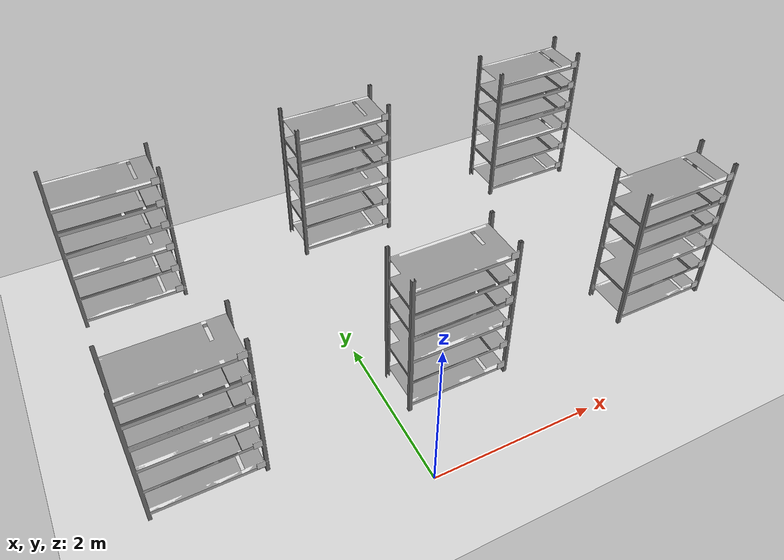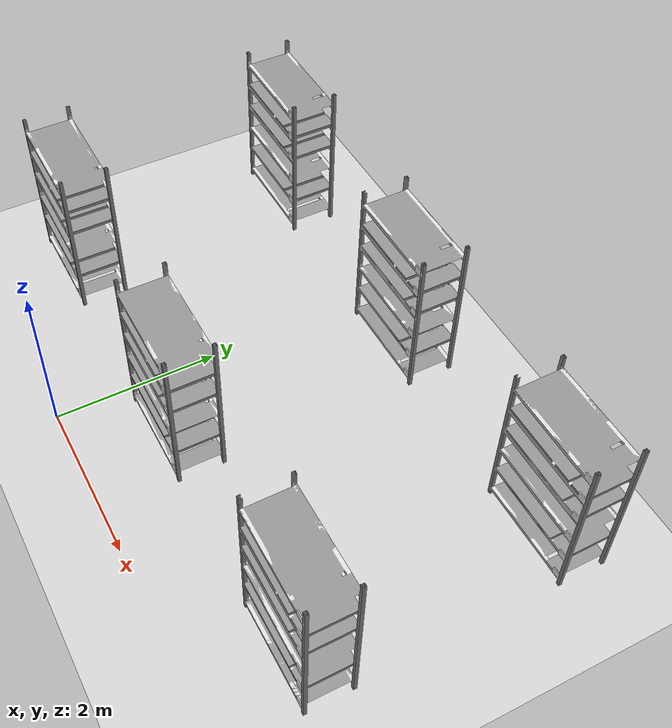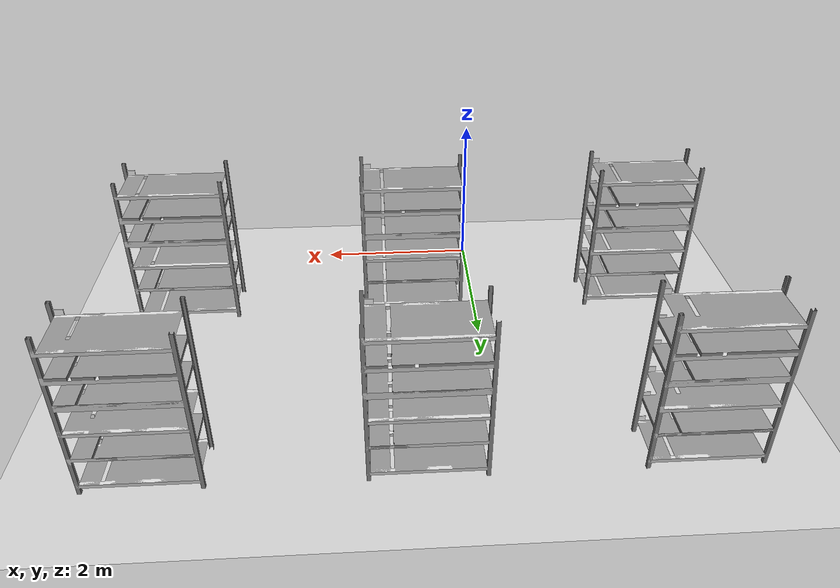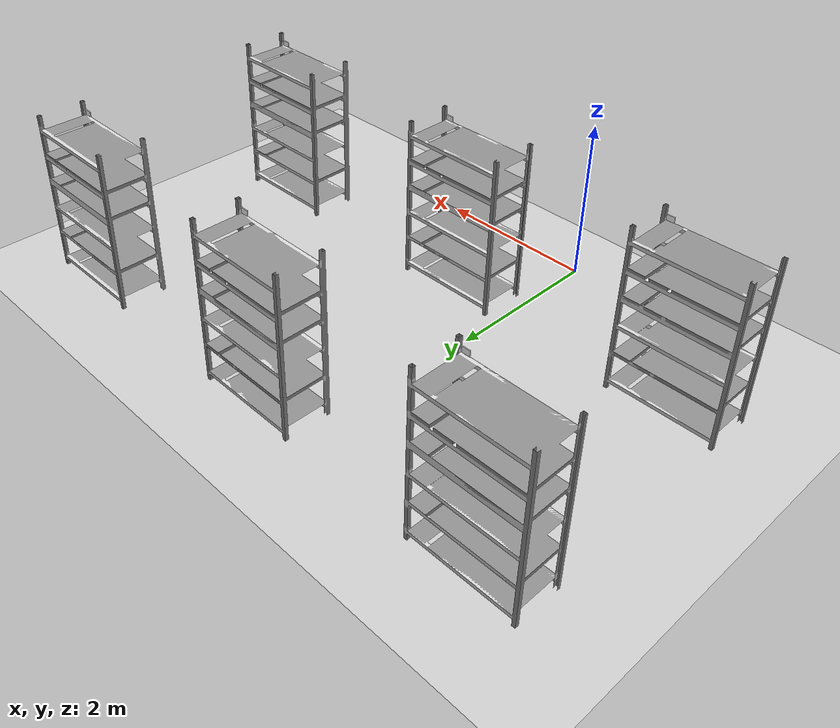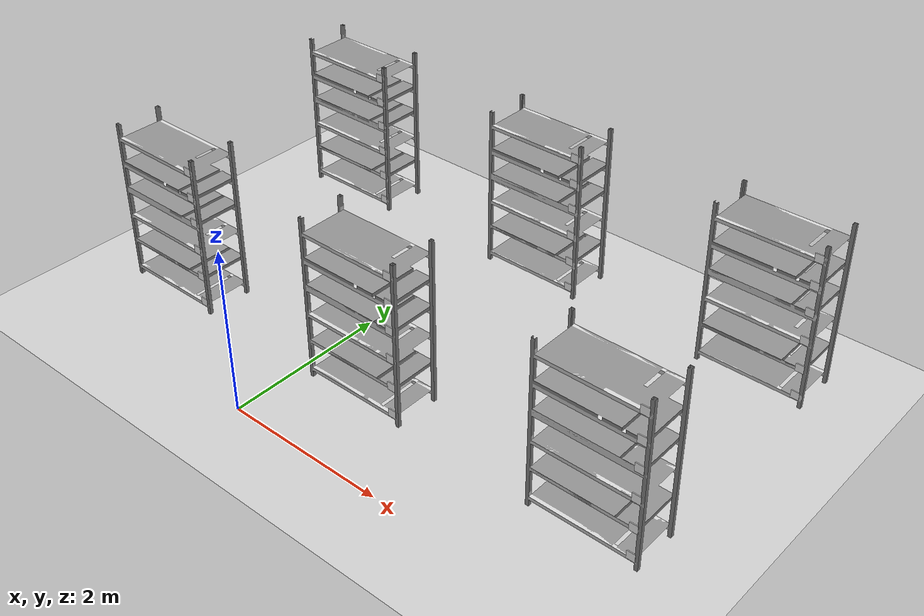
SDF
<sdf version="1.7">
 <world name="default">
  <model name="ground_plane">
   <static>1</static>
   <link name="link">
    <collision name="collision">
     <geometry><plane><normal>0 0 1</normal><size>100 100</size></plane></geometry>
     <surface><friction><ode><mu>100</mu><mu2>50</mu2></ode></friction></surface>
    </collision>
    <visual name="visual">
     <cast_shadows>0</cast_shadows>
     <geometry><plane><normal>0 0 1</normal><size>100 100</size></plane></geometry>
     <material>
      <script><uri>file://media/materials/scripts/gazebo.material</uri><name>Gazebo/Grey</name></script>
     </material>
    </visual>
   </link>
  </model>
  <light name="sun" type="directional">
   <pose>0 0 10 0 -0 0</pose>
   <diffuse>0.8 0.8 0.8 1</diffuse>
   <specular>0.2 0.2 0.2 1</specular>
   <attenuation>
    <range>1000</range>
    <constant>0.9</constant>
    <linear>0.01</linear>
    <quadratic>0.001</quadratic>
   </attenuation>
   <direction>-0.5 0.1 -0.9</direction>
   <spot><inner_angle>0</inner_angle><outer_angle>0</outer_angle><falloff>0</falloff></spot>
  </light>
  <model name="shelf_6_r1_c1">
   <static>1</static>
   <link name="link">
    <collision name="collision">
     <geometry>
      <mesh><uri>model://shelf_6/meshes/shelf_6.dae</uri><scale>0.001 0.001 0.001</scale></mesh>
     </geometry>
    </collision>
    <visual name="visual">
     <geometry>
      <mesh><uri>model://shelf_6/meshes/shelf_6.dae</uri><scale>0.001 0.001 0.001</scale></mesh>
     </geometry>
    </visual>
   </link>
   <pose>-1.5 1.5 0 0 -0 0</pose>
  </model>
  <model name="shelf_6_r1_c2">
   <static>1</static>
   <link name="link">
    <collision name="collision">
     <geometry>
      <mesh><uri>model://shelf_6/meshes/shelf_6.dae</uri><scale>0.001 0.001 0.001</scale></mesh>
     </geometry>
    </collision>
    <visual name="visual">
     <geometry>
      <mesh><uri>model://shelf_6/meshes/shelf_6.dae</uri><scale>0.001 0.001 0.001</scale></mesh>
     </geometry>
    </visual>
   </link>
   <pose>1.5 1.5 0 0 -0 0</pose>
  </model>
  <model name="shelf_6_r1_c3">
   <static>1</static>
   <link name="link">
    <collision name="collision">
     <geometry>
      <mesh><uri>model://shelf_6/meshes/shelf_6.dae</uri><scale>0.001 0.001 0.001</scale></mesh>
     </geometry>
    </collision>
    <visual name="visual">
     <geometry>
      <mesh><uri>model://shelf_6/meshes/shelf_6.dae</uri><scale>0.001 0.001 0.001</scale></mesh>
     </geometry>
    </visual>
   </link>
   <pose>4.5 1.5 0 0 -0 0</pose>
  </model>
  <model name="shelf_6_r2_c1">
   <static>1</static>
   <link name="link">
    <collision name="collision">
     <geometry>
      <mesh><uri>model://shelf_6/meshes/shelf_6.dae</uri><scale>0.001 0.001 0.001</scale></mesh>
     </geometry>
    </collision>
    <visual name="visual">
     <geometry>
      <mesh><uri>model://shelf_6/meshes/shelf_6.dae</uri><scale>0.001 0.001 0.001</scale></mesh>
     </geometry>
    </visual>
   </link>
   <pose>-1.5 4.5 0 0 -0 0</pose>
  </model>
  <model name="shelf_6_r2_c2">
   <static>1</static>
   <link name="link">
    <collision name="collision">
     <geometry>
      <mesh><uri>model://shelf_6/meshes/shelf_6.dae</uri><scale>0.001 0.001 0.001</scale></mesh>
     </geometry>
    </collision>
    <visual name="visual">
     <geometry>
      <mesh><uri>model://shelf_6/meshes/shelf_6.dae</uri><scale>0.001 0.001 0.001</scale></mesh>
     </geometry>
    </visual>
   </link>
   <pose>1.5 4.5 0 0 -0 0</pose>
  </model>
  <model name="shelf_6_r2_c3">
   <static>1</static>
   <link name="link">
    <collision name="collision">
     <geometry>
      <mesh><uri>model://shelf_6/meshes/shelf_6.dae</uri><scale>0.001 0.001 0.001</scale></mesh>
     </geometry>
    </collision>
    <visual name="visual">
     <geometry>
      <mesh><uri>model://shelf_6/meshes/shelf_6.dae</uri><scale>0.001 0.001 0.001</scale></mesh>
     </geometry>
    </visual>
   </link>
   <pose>4.5 4.5 0 0 -0 0</pose>
  </model>
  <model name="stag_r1c1_l1">
   <static>1</static>
   <pose>-1.6 0.9 0.146 1.5708 -0 0</pose>
   <link name="marker_link">
    <collision name="collision"><geometry><box><size>0.1 0.1 0.01</size></box></geometry></collision>
    <visual name="visual">
     <geometry><box><size>0.1 0.1 0.01</size></box></geometry>
     <material>
      <script>
       <uri>model://STag_marker/materials/scripts</uri>
       <uri>model://STag_marker/materials/textures</uri>
       <name>STagMarker/marker_00219</name>
      </script>
      <ambient>1 1 1 1</ambient>
      <diffuse>1 1 1 1</diffuse>
     </material>
     <pose>0 0 0.001 0 -0 0</pose>
    </visual>
   </link>
  </model>
  <model name="stag_r1c1_l2">
   <static>1</static>
   <pose>-1.6 0.9 0.506 1.5708 -0 0</pose>
   <link name="marker_link">
    <collision name="collision"><geometry><box><size>0.1 0.1 0.01</size></box></geometry></collision>
    <visual name="visual">
     <geometry><box><size>0.1 0.1 0.01</size></box></geometry>
     <material>
      <script>
       <uri>model://STag_marker/materials/scripts</uri>
       <uri>model://STag_marker/materials/textures</uri>
       <name>STagMarker/marker_00261</name>
      </script>
      <ambient>1 1 1 1</ambient>
      <diffuse>1 1 1 1</diffuse>
     </material>
     <pose>0 0 0.001 0 -0 0</pose>
    </visual>
   </link>
  </model>
  <model name="stag_r1c1_l3">
   <static>1</static>
   <pose>-1.6 0.9 0.867 1.5708 -0 0</pose>
   <link name="marker_link">
    <collision name="collision"><geometry><box><size>0.1 0.1 0.01</size></box></geometry></collision>
    <visual name="visual">
     <geometry><box><size>0.1 0.1 0.01</size></box></geometry>
     <material>
      <script>
       <uri>model://STag_marker/materials/scripts</uri>
       <uri>model://STag_marker/materials/textures</uri>
       <name>STagMarker/marker_00426</name>
      </script>
      <ambient>1 1 1 1</ambient>
      <diffuse>1 1 1 1</diffuse>
     </material>
     <pose>0 0 0.001 0 -0 0</pose>
    </visual>
   </link>
  </model>
  <model name="stag_r1c1_l4">
   <static>1</static>
   <pose>-1.6 0.9 1.227 1.5708 -0 0</pose>
   <link name="marker_link">
    <collision name="collision"><geometry><box><size>0.1 0.1 0.01</size></box></geometry></collision>
    <visual name="visual">
     <geometry><box><size>0.1 0.1 0.01</size></box></geometry>
     <material>
      <script>
       <uri>model://STag_marker/materials/scripts</uri>
       <uri>model://STag_marker/materials/textures</uri>
       <name>STagMarker/marker_00519</name>
      </script>
      <ambient>1 1 1 1</ambient>
      <diffuse>1 1 1 1</diffuse>
     </material>
     <pose>0 0 0.001 0 -0 0</pose>
    </visual>
   </link>
  </model>
  <model name="stag_r1c1_l5">
   <static>1</static>
   <pose>-1.6 0.9 1.556 1.5708 -0 0</pose>
   <link name="marker_link">
    <collision name="collision"><geometry><box><size>0.1 0.1 0.01</size></box></geometry></collision>
    <visual name="visual">
     <geometry><box><size>0.1 0.1 0.01</size></box></geometry>
     <material>
      <script>
       <uri>model://STag_marker/materials/scripts</uri>
       <uri>model://STag_marker/materials/textures</uri>
       <name>STagMarker/marker_00525</name>
      </script>
      <ambient>1 1 1 1</ambient>
      <diffuse>1 1 1 1</diffuse>
     </material>
     <pose>0 0 0.001 0 -0 0</pose>
    </visual>
   </link>
  </model>
  <model name="stag_r1c1_l6">
   <static>1</static>
   <pose>-1.6 0.9 1.886 1.5708 -0 0</pose>
   <link name="marker_link">
    <collision name="collision"><geometry><box><size>0.1 0.1 0.01</size></box></geometry></collision>
    <visual name="visual">
     <geometry><box><size>0.1 0.1 0.01</size></box></geometry>
     <material>
      <script>
       <uri>model://STag_marker/materials/scripts</uri>
       <uri>model://STag_marker/materials/textures</uri>
       <name>STagMarker/marker_00526</name>
      </script>
      <ambient>1 1 1 1</ambient>
      <diffuse>1 1 1 1</diffuse>
     </material>
     <pose>0 0 0.001 0 -0 0</pose>
    </visual>
   </link>
  </model>
  <model name="stag_r1c2_l1">
   <static>1</static>
   <pose>1.4 0.9 0.146 1.5708 -0 0</pose>
   <link name="marker_link">
    <collision name="collision"><geometry><box><size>0.1 0.1 0.01</size></box></geometry></collision>
    <visual name="visual">
     <geometry><box><size>0.1 0.1 0.01</size></box></geometry>
     <material>
      <script>
       <uri>model://STag_marker/materials/scripts</uri>
       <uri>model://STag_marker/materials/textures</uri>
       <name>STagMarker/marker_00537</name>
      </script>
      <ambient>1 1 1 1</ambient>
      <diffuse>1 1 1 1</diffuse>
     </material>
     <pose>0 0 0.001 0 -0 0</pose>
    </visual>
   </link>
  </model>
  <model name="stag_r1c2_l2">
   <static>1</static>
   <pose>1.4 0.9 0.506 1.5708 -0 0</pose>
   <link name="marker_link">
    <collision name="collision"><geometry><box><size>0.1 0.1 0.01</size></box></geometry></collision>
    <visual name="visual">
     <geometry><box><size>0.1 0.1 0.01</size></box></geometry>
     <material>
      <script>
       <uri>model://STag_marker/materials/scripts</uri>
       <uri>model://STag_marker/materials/textures</uri>
       <name>STagMarker/marker_00563</name>
      </script>
      <ambient>1 1 1 1</ambient>
      <diffuse>1 1 1 1</diffuse>
     </material>
     <pose>0 0 0.001 0 -0 0</pose>
    </visual>
   </link>
  </model>
  <model name="stag_r1c2_l3">
   <static>1</static>
   <pose>1.4 0.9 0.867 1.5708 -0 0</pose>
   <link name="marker_link">
    <collision name="collision"><geometry><box><size>0.1 0.1 0.01</size></box></geometry></collision>
    <visual name="visual">
     <geometry><box><size>0.1 0.1 0.01</size></box></geometry>
     <material>
      <script>
       <uri>model://STag_marker/materials/scripts</uri>
       <uri>model://STag_marker/materials/textures</uri>
       <name>STagMarker/marker_00578</name>
      </script>
      <ambient>1 1 1 1</ambient>
      <diffuse>1 1 1 1</diffuse>
     </material>
     <pose>0 0 0.001 0 -0 0</pose>
    </visual>
   </link>
  </model>
  <model name="stag_r1c2_l4">
   <static>1</static>
   <pose>1.4 0.9 1.227 1.5708 -0 0</pose>
   <link name="marker_link">
    <collision name="collision"><geometry><box><size>0.1 0.1 0.01</size></box></geometry></collision>
    <visual name="visual">
     <geometry><box><size>0.1 0.1 0.01</size></box></geometry>
     <material>
      <script>
       <uri>model://STag_marker/materials/scripts</uri>
       <uri>model://STag_marker/materials/textures</uri>
       <name>STagMarker/marker_00679</name>
      </script>
      <ambient>1 1 1 1</ambient>
      <diffuse>1 1 1 1</diffuse>
     </material>
     <pose>0 0 0.001 0 -0 0</pose>
    </visual>
   </link>
  </model>
  <model name="stag_r1c2_l5">
   <static>1</static>
   <pose>1.4 0.9 1.556 1.5708 -0 0</pose>
   <link name="marker_link">
    <collision name="collision"><geometry><box><size>0.1 0.1 0.01</size></box></geometry></collision>
    <visual name="visual">
     <geometry><box><size>0.1 0.1 0.01</size></box></geometry>
     <material>
      <script>
       <uri>model://STag_marker/materials/scripts</uri>
       <uri>model://STag_marker/materials/textures</uri>
       <name>STagMarker/marker_00800</name>
      </script>
      <ambient>1 1 1 1</ambient>
      <diffuse>1 1 1 1</diffuse>
     </material>
     <pose>0 0 0.001 0 -0 0</pose>
    </visual>
   </link>
  </model>
  <model name="stag_r1c2_l6">
   <static>1</static>
   <pose>1.4 0.9 1.886 1.5708 -0 0</pose>
   <link name="marker_link">
    <collision name="collision"><geometry><box><size>0.1 0.1 0.01</size></box></geometry></collision>
    <visual name="visual">
     <geometry><box><size>0.1 0.1 0.01</size></box></geometry>
     <material>
      <script>
       <uri>model://STag_marker/materials/scripts</uri>
       <uri>model://STag_marker/materials/textures</uri>
       <name>STagMarker/marker_00848</name>
      </script>
      <ambient>1 1 1 1</ambient>
      <diffuse>1 1 1 1</diffuse>
     </material>
     <pose>0 0 0.001 0 -0 0</pose>
    </visual>
   </link>
  </model>
  <model name="stag_r1c3_l1">
   <static>1</static>
   <pose>4.4 0.9 0.146 1.5708 -0 0</pose>
   <link name="marker_link">
    <collision name="collision"><geometry><box><size>0.1 0.1 0.01</size></box></geometry></collision>
    <visual name="visual">
     <geometry><box><size>0.1 0.1 0.01</size></box></geometry>
     <material>
      <script>
       <uri>model://STag_marker/materials/scripts</uri>
       <uri>model://STag_marker/materials/textures</uri>
       <name>STagMarker/marker_01138</name>
      </script>
      <ambient>1 1 1 1</ambient>
      <diffuse>1 1 1 1</diffuse>
     </material>
     <pose>0 0 0.001 0 -0 0</pose>
    </visual>
   </link>
  </model>
  <model name="stag_r1c3_l2">
   <static>1</static>
   <pose>4.4 0.9 0.506 1.5708 -0 0</pose>
   <link name="marker_link">
    <collision name="collision"><geometry><box><size>0.1 0.1 0.01</size></box></geometry></collision>
    <visual name="visual">
     <geometry><box><size>0.1 0.1 0.01</size></box></geometry>
     <material>
      <script>
       <uri>model://STag_marker/materials/scripts</uri>
       <uri>model://STag_marker/materials/textures</uri>
       <name>STagMarker/marker_01181</name>
      </script>
      <ambient>1 1 1 1</ambient>
      <diffuse>1 1 1 1</diffuse>
     </material>
     <pose>0 0 0.001 0 -0 0</pose>
    </visual>
   </link>
  </model>
  <model name="stag_r1c3_l3">
   <static>1</static>
   <pose>4.4 0.9 0.867 1.5708 -0 0</pose>
   <link name="marker_link">
    <collision name="collision"><geometry><box><size>0.1 0.1 0.01</size></box></geometry></collision>
    <visual name="visual">
     <geometry><box><size>0.1 0.1 0.01</size></box></geometry>
     <material>
      <script>
       <uri>model://STag_marker/materials/scripts</uri>
       <uri>model://STag_marker/materials/textures</uri>
       <name>STagMarker/marker_01311</name>
      </script>
      <ambient>1 1 1 1</ambient>
      <diffuse>1 1 1 1</diffuse>
     </material>
     <pose>0 0 0.001 0 -0 0</pose>
    </visual>
   </link>
  </model>
  <model name="stag_r1c3_l4">
   <static>1</static>
   <pose>4.4 0.9 1.227 1.5708 -0 0</pose>
   <link name="marker_link">
    <collision name="collision"><geometry><box><size>0.1 0.1 0.01</size></box></geometry></collision>
    <visual name="visual">
     <geometry><box><size>0.1 0.1 0.01</size></box></geometry>
     <material>
      <script>
       <uri>model://STag_marker/materials/scripts</uri>
       <uri>model://STag_marker/materials/textures</uri>
       <name>STagMarker/marker_01391</name>
      </script>
      <ambient>1 1 1 1</ambient>
      <diffuse>1 1 1 1</diffuse>
     </material>
     <pose>0 0 0.001 0 -0 0</pose>
    </visual>
   </link>
  </model>
  <model name="stag_r1c3_l5">
   <static>1</static>
   <pose>4.4 0.9 1.556 1.5708 -0 0</pose>
   <link name="marker_link">
    <collision name="collision"><geometry><box><size>0.1 0.1 0.01</size></box></geometry></collision>
    <visual name="visual">
     <geometry><box><size>0.1 0.1 0.01</size></box></geometry>
     <material>
      <script>
       <uri>model://STag_marker/materials/scripts</uri>
       <uri>model://STag_marker/materials/textures</uri>
       <name>STagMarker/marker_01396</name>
      </script>
      <ambient>1 1 1 1</ambient>
      <diffuse>1 1 1 1</diffuse>
     </material>
     <pose>0 0 0.001 0 -0 0</pose>
    </visual>
   </link>
  </model>
  <model name="stag_r1c3_l6">
   <static>1</static>
   <pose>4.4 0.9 1.886 1.5708 -0 0</pose>
   <link name="marker_link">
    <collision name="collision"><geometry><box><size>0.1 0.1 0.01</size></box></geometry></collision>
    <visual name="visual">
     <geometry><box><size>0.1 0.1 0.01</size></box></geometry>
     <material>
      <script>
       <uri>model://STag_marker/materials/scripts</uri>
       <uri>model://STag_marker/materials/textures</uri>
       <name>STagMarker/marker_01451</name>
      </script>
      <ambient>1 1 1 1</ambient>
      <diffuse>1 1 1 1</diffuse>
     </material>
     <pose>0 0 0.001 0 -0 0</pose>
    </visual>
   </link>
  </model>
  <model name="stag_r2c1_l1">
   <static>1</static>
   <pose>-1.6 3.9 0.146 1.5708 -0 0</pose>
   <link name="marker_link">
    <collision name="collision"><geometry><box><size>0.1 0.1 0.01</size></box></geometry></collision>
    <visual name="visual">
     <geometry><box><size>0.1 0.1 0.01</size></box></geometry>
     <material>
      <script>
       <uri>model://STag_marker/materials/scripts</uri>
       <uri>model://STag_marker/materials/textures</uri>
       <name>STagMarker/marker_01509</name>
      </script>
      <ambient>1 1 1 1</ambient>
      <diffuse>1 1 1 1</diffuse>
     </material>
     <pose>0 0 0.001 0 -0 0</pose>
    </visual>
   </link>
  </model>
  <model name="stag_r2c1_l2">
   <static>1</static>
   <pose>-1.6 3.9 0.506 1.5708 -0 0</pose>
   <link name="marker_link">
    <collision name="collision"><geometry><box><size>0.1 0.1 0.01</size></box></geometry></collision>
    <visual name="visual">
     <geometry><box><size>0.1 0.1 0.01</size></box></geometry>
     <material>
      <script>
       <uri>model://STag_marker/materials/scripts</uri>
       <uri>model://STag_marker/materials/textures</uri>
       <name>STagMarker/marker_01579</name>
      </script>
      <ambient>1 1 1 1</ambient>
      <diffuse>1 1 1 1</diffuse>
     </material>
     <pose>0 0 0.001 0 -0 0</pose>
    </visual>
   </link>
  </model>
  <model name="stag_r2c1_l3">
   <static>1</static>
   <pose>-1.6 3.9 0.867 1.5708 -0 0</pose>
   <link name="marker_link">
    <collision name="collision"><geometry><box><size>0.1 0.1 0.01</size></box></geometry></collision>
    <visual name="visual">
     <geometry><box><size>0.1 0.1 0.01</size></box></geometry>
     <material>
      <script>
       <uri>model://STag_marker/materials/scripts</uri>
       <uri>model://STag_marker/materials/textures</uri>
       <name>STagMarker/marker_01603</name>
      </script>
      <ambient>1 1 1 1</ambient>
      <diffuse>1 1 1 1</diffuse>
     </material>
     <pose>0 0 0.001 0 -0 0</pose>
    </visual>
   </link>
  </model>
  <model name="stag_r2c1_l4">
   <static>1</static>
   <pose>-1.6 3.9 1.227 1.5708 -0 0</pose>
   <link name="marker_link">
    <collision name="collision"><geometry><box><size>0.1 0.1 0.01</size></box></geometry></collision>
    <visual name="visual">
     <geometry><box><size>0.1 0.1 0.01</size></box></geometry>
     <material>
      <script>
       <uri>model://STag_marker/materials/scripts</uri>
       <uri>model://STag_marker/materials/textures</uri>
       <name>STagMarker/marker_01630</name>
      </script>
      <ambient>1 1 1 1</ambient>
      <diffuse>1 1 1 1</diffuse>
     </material>
     <pose>0 0 0.001 0 -0 0</pose>
    </visual>
   </link>
  </model>
  <model name="stag_r2c1_l5">
   <static>1</static>
   <pose>-1.6 3.9 1.556 1.5708 -0 0</pose>
   <link name="marker_link">
    <collision name="collision"><geometry><box><size>0.1 0.1 0.01</size></box></geometry></collision>
    <visual name="visual">
     <geometry><box><size>0.1 0.1 0.01</size></box></geometry>
     <material>
      <script>
       <uri>model://STag_marker/materials/scripts</uri>
       <uri>model://STag_marker/materials/textures</uri>
       <name>STagMarker/marker_01654</name>
      </script>
      <ambient>1 1 1 1</ambient>
      <diffuse>1 1 1 1</diffuse>
     </material>
     <pose>0 0 0.001 0 -0 0</pose>
    </visual>
   </link>
  </model>
  <model name="stag_r2c1_l6">
   <static>1</static>
   <pose>-1.6 3.9 1.886 1.5708 -0 0</pose>
   <link name="marker_link">
    <collision name="collision"><geometry><box><size>0.1 0.1 0.01</size></box></geometry></collision>
    <visual name="visual">
     <geometry><box><size>0.1 0.1 0.01</size></box></geometry>
     <material>
      <script>
       <uri>model://STag_marker/materials/scripts</uri>
       <uri>model://STag_marker/materials/textures</uri>
       <name>STagMarker/marker_01690</name>
      </script>
      <ambient>1 1 1 1</ambient>
      <diffuse>1 1 1 1</diffuse>
     </material>
     <pose>0 0 0.001 0 -0 0</pose>
    </visual>
   </link>
  </model>
  <model name="stag_r2c2_l1">
   <static>1</static>
   <pose>1.4 3.9 0.146 1.5708 -0 0</pose>
   <link name="marker_link">
    <collision name="collision"><geometry><box><size>0.1 0.1 0.01</size></box></geometry></collision>
    <visual name="visual">
     <geometry><box><size>0.1 0.1 0.01</size></box></geometry>
     <material>
      <script>
       <uri>model://STag_marker/materials/scripts</uri>
       <uri>model://STag_marker/materials/textures</uri>
       <name>STagMarker/marker_01824</name>
      </script>
      <ambient>1 1 1 1</ambient>
      <diffuse>1 1 1 1</diffuse>
     </material>
     <pose>0 0 0.001 0 -0 0</pose>
    </visual>
   </link>
  </model>
  <model name="stag_r2c2_l2">
   <static>1</static>
   <pose>1.4 3.9 0.506 1.5708 -0 0</pose>
   <link name="marker_link">
    <collision name="collision"><geometry><box><size>0.1 0.1 0.01</size></box></geometry></collision>
    <visual name="visual">
     <geometry><box><size>0.1 0.1 0.01</size></box></geometry>
     <material>
      <script>
       <uri>model://STag_marker/materials/scripts</uri>
       <uri>model://STag_marker/materials/textures</uri>
       <name>STagMarker/marker_01862</name>
      </script>
      <ambient>1 1 1 1</ambient>
      <diffuse>1 1 1 1</diffuse>
     </material>
     <pose>0 0 0.001 0 -0 0</pose>
    </visual>
   </link>
  </model>
  <model name="stag_r2c2_l3">
   <static>1</static>
   <pose>1.4 3.9 0.867 1.5708 -0 0</pose>
   <link name="marker_link">
    <collision name="collision"><geometry><box><size>0.1 0.1 0.01</size></box></geometry></collision>
    <visual name="visual">
     <geometry><box><size>0.1 0.1 0.01</size></box></geometry>
     <material>
      <script>
       <uri>model://STag_marker/materials/scripts</uri>
       <uri>model://STag_marker/materials/textures</uri>
       <name>STagMarker/marker_01928</name>
      </script>
      <ambient>1 1 1 1</ambient>
      <diffuse>1 1 1 1</diffuse>
     </material>
     <pose>0 0 0.001 0 -0 0</pose>
    </visual>
   </link>
  </model>
  <model name="stag_r2c2_l4">
   <static>1</static>
   <pose>1.4 3.9 1.227 1.5708 -0 0</pose>
   <link name="marker_link">
    <collision name="collision"><geometry><box><size>0.1 0.1 0.01</size></box></geometry></collision>
    <visual name="visual">
     <geometry><box><size>0.1 0.1 0.01</size></box></geometry>
     <material>
      <script>
       <uri>model://STag_marker/materials/scripts</uri>
       <uri>model://STag_marker/materials/textures</uri>
       <name>STagMarker/marker_01999</name>
      </script>
      <ambient>1 1 1 1</ambient>
      <diffuse>1 1 1 1</diffuse>
     </material>
     <pose>0 0 0.001 0 -0 0</pose>
    </visual>
   </link>
  </model>
  <model name="stag_r2c2_l5">
   <static>1</static>
   <pose>1.4 3.9 1.556 1.5708 -0 0</pose>
   <link name="marker_link">
    <collision name="collision"><geometry><box><size>0.1 0.1 0.01</size></box></geometry></collision>
    <visual name="visual">
     <geometry><box><size>0.1 0.1 0.01</size></box></geometry>
     <material>
      <script>
       <uri>model://STag_marker/materials/scripts</uri>
       <uri>model://STag_marker/materials/textures</uri>
       <name>STagMarker/marker_02027</name>
      </script>
      <ambient>1 1 1 1</ambient>
      <diffuse>1 1 1 1</diffuse>
     </material>
     <pose>0 0 0.001 0 -0 0</pose>
    </visual>
   </link>
  </model>
  <model name="stag_r2c2_l6">
   <static>1</static>
   <pose>1.4 3.9 1.886 1.5708 -0 0</pose>
   <link name="marker_link">
    <collision name="collision"><geometry><box><size>0.1 0.1 0.01</size></box></geometry></collision>
    <visual name="visual">
     <geometry><box><size>0.1 0.1 0.01</size></box></geometry>
     <material>
      <script>
       <uri>model://STag_marker/materials/scripts</uri>
       <uri>model://STag_marker/materials/textures</uri>
       <name>STagMarker/marker_02149</name>
      </script>
      <ambient>1 1 1 1</ambient>
      <diffuse>1 1 1 1</diffuse>
     </material>
     <pose>0 0 0.001 0 -0 0</pose>
    </visual>
   </link>
  </model>
  <model name="stag_r2c3_l1">
   <static>1</static>
   <pose>4.4 3.9 0.146 1.5708 -0 0</pose>
   <link name="marker_link">
    <collision name="collision"><geometry><box><size>0.1 0.1 0.01</size></box></geometry></collision>
    <visual name="visual">
     <geometry><box><size>0.1 0.1 0.01</size></box></geometry>
     <material>
      <script>
       <uri>model://STag_marker/materials/scripts</uri>
       <uri>model://STag_marker/materials/textures</uri>
       <name>STagMarker/marker_02234</name>
      </script>
      <ambient>1 1 1 1</ambient>
      <diffuse>1 1 1 1</diffuse>
     </material>
     <pose>0 0 0.001 0 -0 0</pose>
    </visual>
   </link>
  </model>
  <model name="stag_r2c3_l2">
   <static>1</static>
   <pose>4.4 3.9 0.506 1.5708 -0 0</pose>
   <link name="marker_link">
    <collision name="collision"><geometry><box><size>0.1 0.1 0.01</size></box></geometry></collision>
    <visual name="visual">
     <geometry><box><size>0.1 0.1 0.01</size></box></geometry>
     <material>
      <script>
       <uri>model://STag_marker/materials/scripts</uri>
       <uri>model://STag_marker/materials/textures</uri>
       <name>STagMarker/marker_02269</name>
      </script>
      <ambient>1 1 1 1</ambient>
      <diffuse>1 1 1 1</diffuse>
     </material>
     <pose>0 0 0.001 0 -0 0</pose>
    </visual>
   </link>
  </model>
  <model name="stag_r2c3_l3">
   <static>1</static>
   <pose>4.4 3.9 0.867 1.5708 -0 0</pose>
   <link name="marker_link">
    <collision name="collision"><geometry><box><size>0.1 0.1 0.01</size></box></geometry></collision>
    <visual name="visual">
     <geometry><box><size>0.1 0.1 0.01</size></box></geometry>
     <material>
      <script>
       <uri>model://STag_marker/materials/scripts</uri>
       <uri>model://STag_marker/materials/textures</uri>
       <name>STagMarker/marker_02275</name>
      </script>
      <ambient>1 1 1 1</ambient>
      <diffuse>1 1 1 1</diffuse>
     </material>
     <pose>0 0 0.001 0 -0 0</pose>
    </visual>
   </link>
  </model>
  <model name="stag_r2c3_l4">
   <static>1</static>
   <pose>4.4 3.9 1.227 1.5708 -0 0</pose>
   <link name="marker_link">
    <collision name="collision"><geometry><box><size>0.1 0.1 0.01</size></box></geometry></collision>
    <visual name="visual">
     <geometry><box><size>0.1 0.1 0.01</size></box></geometry>
     <material>
      <script>
       <uri>model://STag_marker/materials/scripts</uri>
       <uri>model://STag_marker/materials/textures</uri>
       <name>STagMarker/marker_02288</name>
      </script>
      <ambient>1 1 1 1</ambient>
      <diffuse>1 1 1 1</diffuse>
     </material>
     <pose>0 0 0.001 0 -0 0</pose>
    </visual>
   </link>
  </model>
  <model name="stag_r2c3_l5">
   <static>1</static>
   <pose>4.4 3.9 1.556 1.5708 -0 0</pose>
   <link name="marker_link">
    <collision name="collision"><geometry><box><size>0.1 0.1 0.01</size></box></geometry></collision>
    <visual name="visual">
     <geometry><box><size>0.1 0.1 0.01</size></box></geometry>
     <material>
      <script>
       <uri>model://STag_marker/materials/scripts</uri>
       <uri>model://STag_marker/materials/textures</uri>
       <name>STagMarker/marker_02346</name>
      </script>
      <ambient>1 1 1 1</ambient>
      <diffuse>1 1 1 1</diffuse>
     </material>
     <pose>0 0 0.001 0 -0 0</pose>
    </visual>
   </link>
  </model>
  <model name="stag_r2c3_l6">
   <static>1</static>
   <pose>4.4 3.9 1.886 1.5708 -0 0</pose>
   <link name="marker_link">
    <collision name="collision"><geometry><box><size>0.1 0.1 0.01</size></box></geometry></collision>
    <visual name="visual">
     <geometry><box><size>0.1 0.1 0.01</size></box></geometry>
     <material>
      <script>
       <uri>model://STag_marker/materials/scripts</uri>
       <uri>model://STag_marker/materials/textures</uri>
       <name>STagMarker/marker_02365</name>
      </script>
      <ambient>1 1 1 1</ambient>
      <diffuse>1 1 1 1</diffuse>
     </material>
     <pose>0 0 0.001 0 -0 0</pose>
    </visual>
   </link>
  </model>
  <gravity>0 0 -9.8</gravity>
  <magnetic_field>6e-06 2.3e-05 -4.2e-05</magnetic_field>
  <atmosphere type="adiabatic"/>
  <physics type="ode">
   <max_step_size>0.001</max_step_size>
   <real_time_factor>1</real_time_factor>
   <real_time_update_rate>1000</real_time_update_rate>
  </physics>
  <scene><ambient>0.4 0.4 0.4 1</ambient><background>0.7 0.7 0.7 1</background><shadows>1</shadows></scene>
  <audio><device>default</device></audio>
  <spherical_coordinates>
   <surface_model>EARTH_WGS84</surface_model>
   <latitude_deg>0</latitude_deg>
   <longitude_deg>0</longitude_deg>
   <elevation>0</elevation>
   <heading_deg>0</heading_deg>
  </spherical_coordinates>
 </world>
</sdf>
